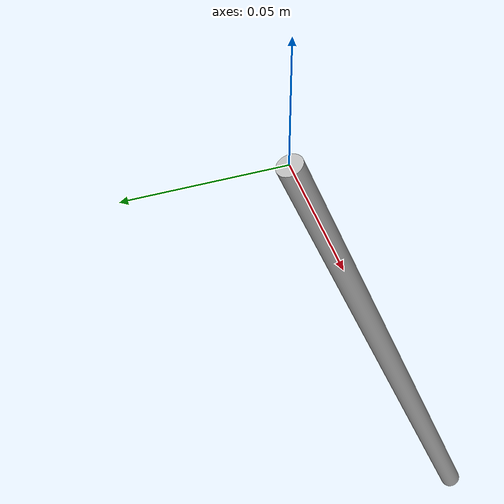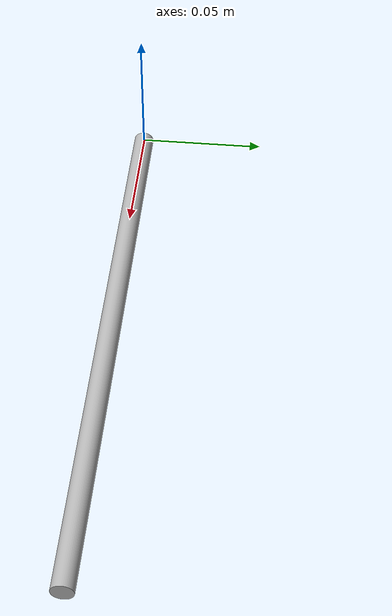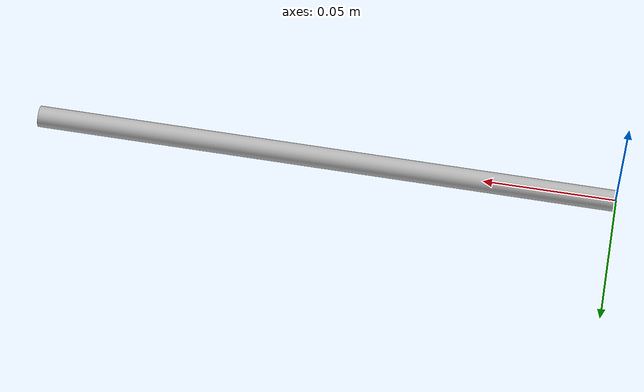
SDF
<?xml version="1.0" ?>
<sdf version="1.6">
  <model name="straw_8mm_raw">
    <link name="straw">
      <inertial>
        <mass>0.1</mass>
      </inertial>

      <collision name="collision">
        <pose>0.11 0 0 0 1.570800 0</pose>
        <geometry>
          <cylinder>
            <length>0.220</length>
            <radius>0.004</radius>
          </cylinder>
        </geometry>
      </collision>

      <visual name="visual">
         <geometry>
           <mesh>
             <uri>model://straw_8mm_raw/meshes/straw_8_raw_material.stl</uri>
             <scale>0.001 0.001 0.001</scale>
           </mesh>
         </geometry>
       </visual>
    </link>
  </model>
</sdf>
